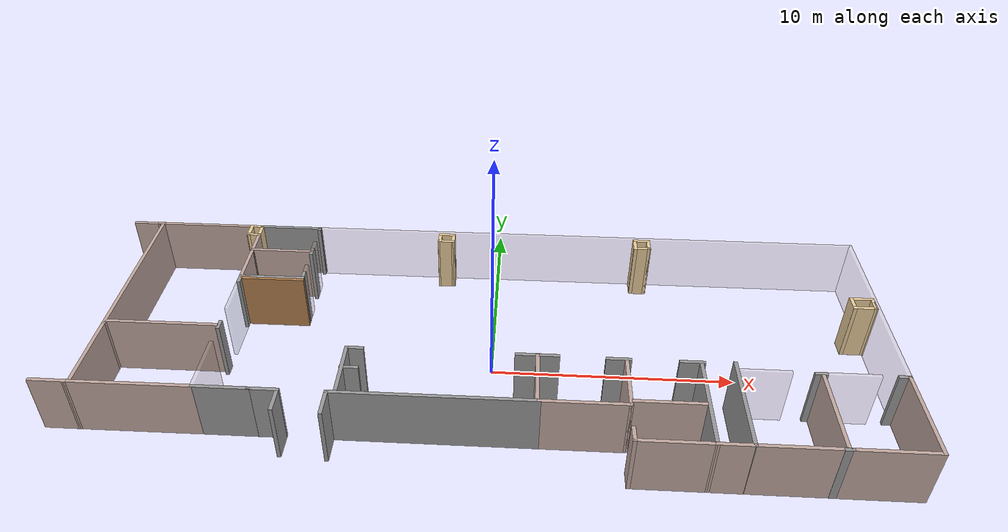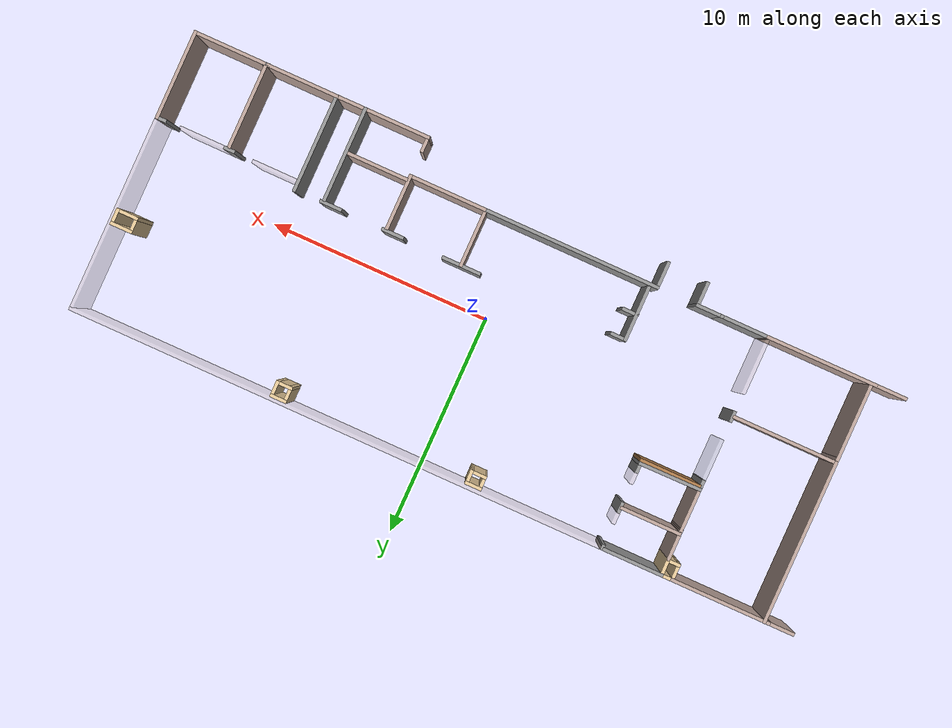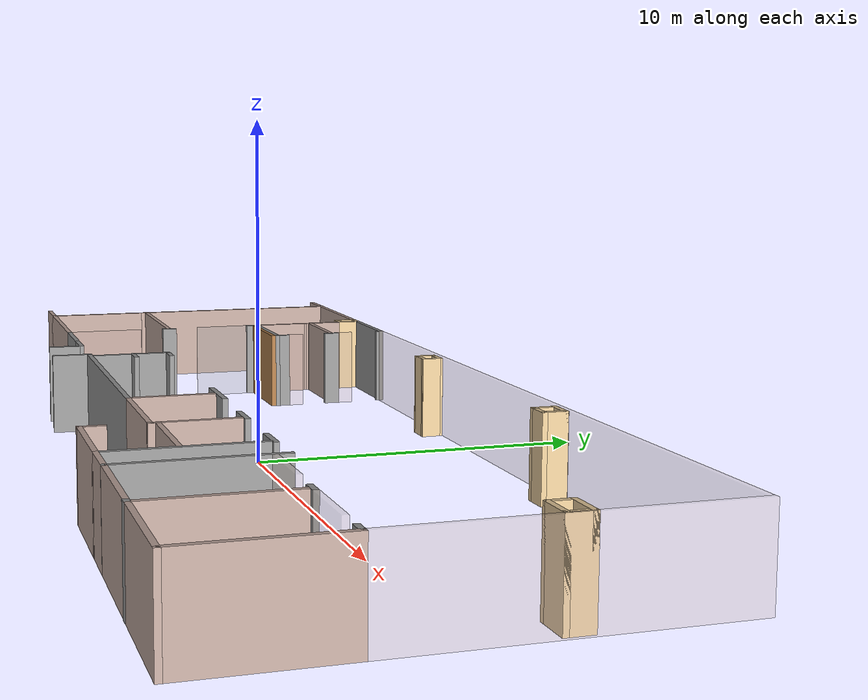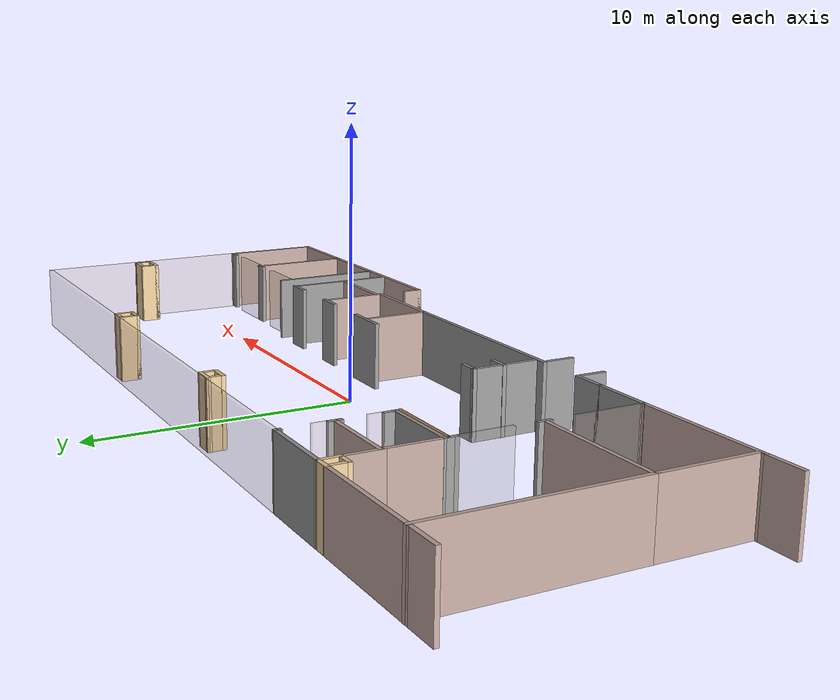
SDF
<?xml version='1.0'?>
<sdf version='1.6'>
  <model name='oa2'>
    <pose frame=''>-0.678371 0.389799 0 0 -0 0</pose>
    <link name='Wall_0'>
      <collision name='Wall_0_Collision'>
        <geometry>
          <box>
            <size>0.75 0.15 2.5</size>
          </box>
        </geometry>
        <pose frame=''>0 0 1.25 0 -0 0</pose>
      </collision>
      <visual name='Wall_0_Visual'>
        <pose frame=''>0 0 1.25 0 -0 0</pose>
        <geometry>
          <box>
            <size>0.75 0.15 2.5</size>
          </box>
        </geometry>
        <material>
          <script>
            <uri>file://media/materials/scripts/gazebo.material</uri>
            <name>Gazebo/Grey</name>
          </script>
          <ambient>0 0 0 1</ambient>
        </material>
        <meta>
          <layer>0</layer>
        </meta>
      </visual>
      <pose frame=''>-4.63163 -1.9898 0 0 -0 3.14159</pose>
    </link>
    <link name='Wall_1'>
      <collision name='Wall_1_Collision'>
        <geometry>
          <box>
            <size>2.5 0.15 2.5</size>
          </box>
        </geometry>
        <pose frame=''>0 0 1.25 0 -0 0</pose>
      </collision>
      <visual name='Wall_1_Visual'>
        <pose frame=''>0 0 1.25 0 -0 0</pose>
        <geometry>
          <box>
            <size>2.5 0.15 2.5</size>
          </box>
        </geometry>
        <material>
          <script>
            <uri>file://media/materials/scripts/gazebo.material</uri>
            <name>Gazebo/Grey</name>
          </script>
          <ambient>0 0 0 1</ambient>
        </material>
        <meta>
          <layer>0</layer>
        </meta>
      </visual>
      <pose frame=''>-4.93163 -3.1648 0 0 0 -1.5708</pose>
    </link>
    <link name='Wall_100'>
      <collision name='Wall_100_Collision'>
        <geometry>
          <box>
            <size>0.366372 0.15 2.5</size>
          </box>
        </geometry>
        <pose frame=''>0 0 1.25 0 -0 0</pose>
      </collision>
      <visual name='Wall_100_Visual'>
        <pose frame=''>0 0 1.25 0 -0 0</pose>
        <geometry>
          <box>
            <size>0.366372 0.15 2.5</size>
          </box>
        </geometry>
        <material>
          <script>
            <uri>file://media/materials/scripts/gazebo.material</uri>
            <name>Gazebo/Grey</name>
          </script>
          <ambient>1 1 1 1</ambient>
        </material>
        <meta>
          <layer>0</layer>
        </meta>
      </visual>
      <pose frame=''>13.2808 -6.2652 0 0 0 -3.11598</pose>
    </link>
    <link name='Wall_102'>
      <collision name='Wall_102_Collision'>
        <geometry>
          <box>
            <size>3.75 0.15 2.5</size>
          </box>
        </geometry>
        <pose frame=''>0 0 1.25 0 -0 0</pose>
      </collision>
      <visual name='Wall_102_Visual'>
        <pose frame=''>0 0 1.25 0 -0 0</pose>
        <geometry>
          <box>
            <size>3.75 0.15 2.5</size>
          </box>
        </geometry>
        <material>
          <script>
            <uri>file://media/materials/scripts/gazebo.material</uri>
            <name>Gazebo/Grey</name>
          </script>
          <ambient>0.760784 0.662745 0.627451 1</ambient>
        </material>
        <meta>
          <layer>0</layer>
        </meta>
      </visual>
      <pose frame=''>13.2718 -4.34355 0 0 0 -1.5708</pose>
    </link>
    <link name='Wall_11'>
      <collision name='Wall_11_Collision'>
        <geometry>
          <box>
            <size>2.5 0.15 2.5</size>
          </box>
        </geometry>
        <pose frame=''>0 0 1.25 0 -0 0</pose>
      </collision>
      <visual name='Wall_11_Visual'>
        <pose frame=''>0 0 1.25 0 -0 0</pose>
        <geometry>
          <box>
            <size>2.5 0.15 2.5</size>
          </box>
        </geometry>
        <material>
          <script>
            <uri>file://media/materials/scripts/gazebo.material</uri>
            <name>Gazebo/Grey</name>
          </script>
          <ambient>0.760784 0.662745 0.627451 1</ambient>
        </material>
        <meta>
          <layer>0</layer>
        </meta>
      </visual>
      <pose frame=''>2.52759 -3.18022 0 0 0 -1.5708</pose>
    </link>
    <link name='Wall_110'>
      <collision name='Wall_110_Collision'>
        <geometry>
          <box>
            <size>3.25 0.15 2.5</size>
          </box>
        </geometry>
        <pose frame=''>0 0 1.25 0 -0 0</pose>
      </collision>
      <visual name='Wall_110_Visual'>
        <pose frame=''>0 0 1.25 0 -0 0</pose>
        <geometry>
          <box>
            <size>3.25 0.15 2.5</size>
          </box>
        </geometry>
        <material>
          <script>
            <uri>file://media/materials/scripts/gazebo.material</uri>
            <name>Gazebo/Grey</name>
          </script>
          <ambient>0.760784 0.662745 0.627451 1</ambient>
        </material>
        <meta>
          <layer>0</layer>
        </meta>
      </visual>
      <pose frame=''>11.6313 -6.25931 0 0 -0 0</pose>
    </link>
    <link name='Wall_113'>
      <collision name='Wall_113_Collision'>
        <geometry>
          <box>
            <size>1.45217 0.15 2.5</size>
          </box>
        </geometry>
        <pose frame=''>0 0 1.25 0 -0 0</pose>
      </collision>
      <visual name='Wall_113_Visual'>
        <pose frame=''>0 0 1.25 0 -0 0</pose>
        <geometry>
          <box>
            <size>1.45217 0.15 2.5</size>
          </box>
        </geometry>
        <material>
          <script>
            <uri>file://media/materials/scripts/gazebo.material</uri>
            <name>Gazebo/Grey</name>
          </script>
          <ambient>0.760784 0.662745 0.627451 1</ambient>
        </material>
        <meta>
          <layer>0</layer>
        </meta>
      </visual>
      <pose frame=''>9.43019 -6.26045 0 0 -0 0.001756</pose>
    </link>
    <link name='Wall_116'>
      <collision name='Wall_116_Collision'>
        <geometry>
          <box>
            <size>4.40779 0.15 2.5</size>
          </box>
        </geometry>
        <pose frame=''>0 0 1.25 0 -0 0</pose>
      </collision>
      <visual name='Wall_116_Visual'>
        <pose frame=''>0 0 1.25 0 -0 0</pose>
        <geometry>
          <box>
            <size>4.40779 0.15 2.5</size>
          </box>
        </geometry>
        <material>
          <script>
            <uri>file://media/materials/scripts/gazebo.material</uri>
            <name>Gazebo/Grey</name>
          </script>
          <ambient>0 0 0 1</ambient>
        </material>
        <meta>
          <layer>0</layer>
        </meta>
      </visual>
      <pose frame=''>10.0806 -4.13042 0 0 0 -1.57049</pose>
    </link>
    <link name='Wall_118'>
      <collision name='Wall_118_Collision'>
        <geometry>
          <box>
            <size>4.25 0.15 2.5</size>
          </box>
        </geometry>
        <pose frame=''>0 0 1.25 0 -0 0</pose>
      </collision>
      <visual name='Wall_118_Visual'>
        <pose frame=''>0 0 1.25 0 -0 0</pose>
        <geometry>
          <box>
            <size>4.25 0.15 2.5</size>
          </box>
        </geometry>
        <material>
          <script>
            <uri>file://media/materials/scripts/gazebo.material</uri>
            <name>Gazebo/Grey</name>
          </script>
          <ambient>0 0 0 1</ambient>
        </material>
        <meta>
          <layer>0</layer>
        </meta>
      </visual>
      <pose frame=''>8.78475 -4.2116 0 0 0 -1.5708</pose>
    </link>
    <link name='Wall_120'>
      <collision name='Wall_120_Collision'>
        <geometry>
          <box>
            <size>1 0.15 2.5</size>
          </box>
        </geometry>
        <pose frame=''>0 0 1.25 0 -0 0</pose>
      </collision>
      <visual name='Wall_120_Visual'>
        <pose frame=''>0 0 1.25 0 -0 0</pose>
        <geometry>
          <box>
            <size>1 0.15 2.5</size>
          </box>
        </geometry>
        <material>
          <script>
            <uri>file://media/materials/scripts/gazebo.material</uri>
            <name>Gazebo/Grey</name>
          </script>
          <ambient>0 0 0 1</ambient>
        </material>
        <meta>
          <layer>0</layer>
        </meta>
      </visual>
      <pose frame=''>8.44693 -2.03935 0 0 -0 0</pose>
    </link>
    <link name='Wall_122'>
      <collision name='Wall_122_Collision'>
        <geometry>
          <box>
            <size>1 0.15 2.5</size>
          </box>
        </geometry>
        <pose frame=''>0 0 1.25 0 -0 0</pose>
      </collision>
      <visual name='Wall_122_Visual'>
        <pose frame=''>0 0 1.25 0 -0 0</pose>
        <geometry>
          <box>
            <size>1 0.15 2.5</size>
          </box>
        </geometry>
        <material>
          <script>
            <uri>file://media/materials/scripts/gazebo.material</uri>
            <name>Gazebo/Grey</name>
          </script>
          <ambient>0 0 0 1</ambient>
        </material>
        <meta>
          <layer>0</layer>
        </meta>
      </visual>
      <pose frame=''>5.64113 -2.03506 0 0 -0 3.14159</pose>
    </link>
    <link name='Wall_124'>
      <collision name='Wall_124_Collision'>
        <geometry>
          <box>
            <size>2.75 0.15 2.5</size>
          </box>
        </geometry>
        <pose frame=''>0 0 1.25 0 -0 0</pose>
      </collision>
      <visual name='Wall_124_Visual'>
        <pose frame=''>0 0 1.25 0 -0 0</pose>
        <geometry>
          <box>
            <size>2.75 0.15 2.5</size>
          </box>
        </geometry>
        <material>
          <script>
            <uri>file://media/materials/scripts/gazebo.material</uri>
            <name>Gazebo/Grey</name>
          </script>
          <ambient>0.760784 0.662745 0.627451 1</ambient>
        </material>
        <meta>
          <layer>0</layer>
        </meta>
      </visual>
      <pose frame=''>7.35645 -4.30687 0 0 -0 3.14159</pose>
    </link>
    <link name='Wall_126'>
      <collision name='Wall_126_Collision'>
        <geometry>
          <box>
            <size>2.5 0.15 2.5</size>
          </box>
        </geometry>
        <pose frame=''>0 0 1.25 0 -0 0</pose>
      </collision>
      <visual name='Wall_126_Visual'>
        <pose frame=''>0 0 1.25 0 -0 0</pose>
        <geometry>
          <box>
            <size>2.5 0.15 2.5</size>
          </box>
        </geometry>
        <material>
          <script>
            <uri>file://media/materials/scripts/gazebo.material</uri>
            <name>Gazebo/Grey</name>
          </script>
          <ambient>0.760784 0.662745 0.627451 1</ambient>
        </material>
        <meta>
          <layer>0</layer>
        </meta>
      </visual>
      <pose frame=''>5.94317 -3.32964 0 0 -0 1.5708</pose>
    </link>
    <link name='Wall_128'>
      <collision name='Wall_128_Collision'>
        <geometry>
          <box>
            <size>3.5 0.15 2.5</size>
          </box>
        </geometry>
        <pose frame=''>0 0 1.25 0 -0 0</pose>
      </collision>
      <visual name='Wall_128_Visual'>
        <pose frame=''>0 0 1.25 0 -0 0</pose>
        <geometry>
          <box>
            <size>3.5 0.15 2.5</size>
          </box>
        </geometry>
        <material>
          <script>
            <uri>file://media/materials/scripts/gazebo.material</uri>
            <name>Gazebo/Grey</name>
          </script>
          <ambient>0.760784 0.662745 0.627451 1</ambient>
        </material>
        <meta>
          <layer>0</layer>
        </meta>
      </visual>
      <pose frame=''>4.26817 -4.50464 0 0 -0 0</pose>
    </link>

    <link name='Wall_136'>
      <collision name='Wall_136_Collision'>
        <geometry>
          <box>
            <size>1.25 0.15 2.5</size>
          </box>
        </geometry>
        <pose frame=''>0 0 1.25 0 -0 0</pose>
      </collision>
      <visual name='Wall_136_Visual'>
        <pose frame=''>0 0 1.25 0 -0 0</pose>
        <geometry>
          <box>
            <size>1.25 0.15 2.5</size>
          </box>
        </geometry>
        <material>
          <script>
            <uri>file://media/materials/scripts/gazebo.material</uri>
            <name>Gazebo/Grey</name>
          </script>
          <ambient>0 0 0 1</ambient>
        </material>
        <meta>
          <layer>0</layer>
        </meta>
      </visual>
      <pose frame=''>-5.25683 -5.05464 0 0 0 -1.5708</pose>
    </link>
    <link name='Wall_14'>
      <collision name='Wall_14_Collision'>
        <geometry>
          <box>
            <size>3.5 0.15 2.5</size>
          </box>
        </geometry>
        <pose frame=''>0 0 1.25 0 -0 0</pose>
      </collision>
      <visual name='Wall_14_Visual'>
        <pose frame=''>0 0 1.25 0 -0 0</pose>
        <geometry>
          <box>
            <size>3.5 0.15 2.5</size>
          </box>
        </geometry>
        <material>
          <script>
            <uri>file://media/materials/scripts/gazebo.material</uri>
            <name>Gazebo/Grey</name>
          </script>
          <ambient>1 1 1 1</ambient>
        </material>
        <meta>
          <layer>0</layer>
        </meta>
      </visual>
      <pose frame=''>4.26817 -4.50464 0 0 -0 0</pose>
    </link>
    <link name='Wall_140'>
      <collision name='Wall_140_Collision'>
        <geometry>
          <box>
            <size>0.15 0.15 2.5</size>
          </box>
        </geometry>
        <pose frame=''>0 0 1.25 0 -0 0</pose>
      </collision>
      <visual name='Wall_140_Visual'>
        <pose frame=''>0 0 1.25 0 -0 0</pose>
        <geometry>
          <box>
            <size>0.15 0.15 2.5</size>
          </box>
        </geometry>
        <material>
          <script>
            <uri>file://media/materials/scripts/gazebo.material</uri>
            <name>Gazebo/Grey</name>
          </script>
          <ambient>0 0 0 1</ambient>
        </material>
        <meta>
          <layer>0</layer>
        </meta>
      </visual>
      <pose frame=''>-8.18351 -4.51172 0 0 -0 0</pose>
    </link>
    <link name='Wall_142'>
      <collision name='Wall_142_Collision'>
        <geometry>
          <box>
            <size>2.25 0.15 2.5</size>
          </box>
        </geometry>
        <pose frame=''>0 0 1.25 0 -0 0</pose>
      </collision>
      <visual name='Wall_142_Visual'>
        <pose frame=''>0 0 1.25 0 -0 0</pose>
        <geometry>
          <box>
            <size>2.25 0.15 2.5</size>
          </box>
        </geometry>
        <material>
          <script>
            <uri>file://media/materials/scripts/gazebo.material</uri>
            <name>Gazebo/Grey</name>
          </script>
          <ambient>0 0 0 1</ambient>
        </material>
        <meta>
          <layer>0</layer>
        </meta>
      </visual>
      <pose frame=''>-9.23351 -4.51172 0 0 -0 0</pose>
    </link>
    <link name='Wall_143'>
      <collision name='Wall_143_Collision'>
        <geometry>
          <box>
            <size>1.25 0.15 2.5</size>
          </box>
        </geometry>
        <pose frame=''>0 0 1.25 0 -0 0</pose>
      </collision>
      <visual name='Wall_143_Visual'>
        <pose frame=''>0 0 1.25 0 -0 0</pose>
        <geometry>
          <box>
            <size>1.25 0.15 2.5</size>
          </box>
        </geometry>
        <material>
          <script>
            <uri>file://media/materials/scripts/gazebo.material</uri>
            <name>Gazebo/Grey</name>
          </script>
          <ambient>0 0 0 1</ambient>
        </material>
        <meta>
          <layer>0</layer>
        </meta>
      </visual>
      <pose frame=''>-7.63351 -4.51172 0 0 -0 0</pose>
    </link>
    <link name='Wall_145'>
      <collision name='Wall_145_Collision'>
        <geometry>
          <box>
            <size>3 0.15 2.5</size>
          </box>
        </geometry>
        <pose frame=''>0 0 1.25 0 -0 0</pose>
      </collision>
      <visual name='Wall_145_Visual'>
        <pose frame=''>0 0 1.25 0 -0 0</pose>
        <geometry>
          <box>
            <size>3 0.15 2.5</size>
          </box>
        </geometry>
        <material>
          <script>
            <uri>file://media/materials/scripts/gazebo.material</uri>
            <name>Gazebo/Grey</name>
          </script>
          <ambient>0.760784 0.662745 0.627451 1</ambient>
        </material>
        <meta>
          <layer>0</layer>
        </meta>
      </visual>
      <pose frame=''>7.35975 -6.2616 0 0 -0 3.14159</pose>
    </link>
    <link name='Wall_146'>
      <collision name='Wall_146_Collision'>
        <geometry>
          <box>
            <size>0.75 0.15 2.5</size>
          </box>
        </geometry>
        <pose frame=''>0 0 1.25 0 -0 0</pose>
      </collision>
      <visual name='Wall_146_Visual'>
        <pose frame=''>0 0 1.25 0 -0 0</pose>
        <geometry>
          <box>
            <size>0.75 0.15 2.5</size>
          </box>
        </geometry>
        <material>
          <script>
            <uri>file://media/materials/scripts/gazebo.material</uri>
            <name>Gazebo/Grey</name>
          </script>
          <ambient>0.760784 0.662745 0.627451 1</ambient>
        </material>
        <meta>
          <layer>0</layer>
        </meta>
      </visual>
      <pose frame=''>5.93475 -5.9616 0 0 -0 1.5708</pose>
    </link>
    <link name='Wall_148'>
      <collision name='Wall_148_Collision'>
        <geometry>
          <box>
            <size>2 0.15 2.5</size>
          </box>
        </geometry>
        <pose frame=''>0 0 1.25 0 -0 0</pose>
      </collision>
      <visual name='Wall_148_Visual'>
        <pose frame=''>0 0 1.25 0 -0 0</pose>
        <geometry>
          <box>
            <size>2 0.15 2.5</size>
          </box>
        </geometry>
        <material>
          <script>
            <uri>file://media/materials/scripts/gazebo.material</uri>
            <name>Gazebo/Grey</name>
          </script>
          <ambient>0.760784 0.662745 0.627451 1</ambient>
        </material>
        <meta>
          <layer>0</layer>
        </meta>
        <transparency>0.7</transparency>
      </visual>
      <pose frame=''>11.1562 -2.38788 0 0 -0 0</pose>
    </link>
    <link name='Wall_150'>
      <collision name='Wall_150_Collision'>
        <geometry>
          <box>
            <size>0.5 0.15 2.5</size>
          </box>
        </geometry>
        <pose frame=''>0 0 1.25 0 -0 0</pose>
      </collision>
      <visual name='Wall_150_Visual'>
        <pose frame=''>0 0 1.25 0 -0 0</pose>
        <geometry>
          <box>
            <size>0.5 0.15 2.5</size>
          </box>
        </geometry>
        <material>
          <script>
            <uri>file://media/materials/scripts/gazebo.material</uri>
            <name>Gazebo/Grey</name>
          </script>
          <ambient>0 0 0 1</ambient>
        </material>
        <meta>
          <layer>0</layer>
        </meta>
      </visual>
      <pose frame=''>13.2138 -2.41724 0 0 -0 0</pose>
    </link>
    <link name='Wall_154'>
      <collision name='Wall_154_Collision'>
        <geometry>
          <box>
            <size>0.75 0.15 2.5</size>
          </box>
        </geometry>
        <pose frame=''>0 0 1.25 0 -0 0</pose>
      </collision>
      <visual name='Wall_154_Visual'>
        <pose frame=''>0 0 1.25 0 -0 0</pose>
        <geometry>
          <box>
            <size>0.75 0.15 2.5</size>
          </box>
        </geometry>
        <material>
          <script>
            <uri>file://media/materials/scripts/gazebo.material</uri>
            <name>Gazebo/Grey</name>
          </script>
          <ambient>0.921569 0.807843 0.615686 1</ambient>
        </material>
        <meta>
          <layer>0</layer>
        </meta>
      </visual>
      <pose frame=''>-1.6868 6.09715 0 0 -0 0</pose>
    </link>
    <link name='Wall_155'>
      <collision name='Wall_155_Collision'>
        <geometry>
          <box>
            <size>0.663879 0.15 2.5</size>
          </box>
        </geometry>
        <pose frame=''>0 0 1.25 0 -0 0</pose>
      </collision>
      <visual name='Wall_155_Visual'>
        <pose frame=''>0 0 1.25 0 -0 0</pose>
        <geometry>
          <box>
            <size>0.663879 0.15 2.5</size>
          </box>
        </geometry>
        <material>
          <script>
            <uri>file://media/materials/scripts/gazebo.material</uri>
            <name>Gazebo/Grey</name>
          </script>
          <ambient>0.921569 0.807843 0.615686 1</ambient>
        </material>
        <meta>
          <layer>0</layer>
        </meta>
      </visual>
      <pose frame=''>-1.38372 5.84021 0 0 0 -1.55883</pose>
    </link>
    <link name='Wall_156'>
      <collision name='Wall_156_Collision'>
        <geometry>
          <box>
            <size>0.75 0.15 2.5</size>
          </box>
        </geometry>
        <pose frame=''>0 0 1.25 0 -0 0</pose>
      </collision>
      <visual name='Wall_156_Visual'>
        <pose frame=''>0 0 1.25 0 -0 0</pose>
        <geometry>
          <box>
            <size>0.75 0.15 2.5</size>
          </box>
        </geometry>
        <material>
          <script>
            <uri>file://media/materials/scripts/gazebo.material</uri>
            <name>Gazebo/Grey</name>
          </script>
          <ambient>0.921569 0.807843 0.615686 1</ambient>
        </material>
        <meta>
          <layer>0</layer>
        </meta>
      </visual>
      <pose frame=''>-1.6868 5.58326 0 0 -0 3.14159</pose>
    </link>
    <link name='Wall_157'>
      <collision name='Wall_157_Collision'>
        <geometry>
          <box>
            <size>0.663879 0.15 2.5</size>
          </box>
        </geometry>
        <pose frame=''>0 0 1.25 0 -0 0</pose>
      </collision>
      <visual name='Wall_157_Visual'>
        <pose frame=''>0 0 1.25 0 -0 0</pose>
        <geometry>
          <box>
            <size>0.663879 0.15 2.5</size>
          </box>
        </geometry>
        <material>
          <script>
            <uri>file://media/materials/scripts/gazebo.material</uri>
            <name>Gazebo/Grey</name>
          </script>
          <ambient>0.921569 0.807843 0.615686 1</ambient>
        </material>
        <meta>
          <layer>0</layer>
        </meta>
      </visual>
      <pose frame=''>-1.98372 5.84021 0 0 -0 1.58277</pose>
    </link>
    <link name='Wall_159'>
      <collision name='Wall_159_Collision'>
        <geometry>
          <box>
            <size>0.75 0.15 2.5</size>
          </box>
        </geometry>
        <pose frame=''>0 0 1.25 0 -0 0</pose>
      </collision>
      <visual name='Wall_159_Visual'>
        <pose frame=''>0 0 1.25 0 -0 0</pose>
        <geometry>
          <box>
            <size>0.75 0.15 2.5</size>
          </box>
        </geometry>
        <material>
          <script>
            <uri>file://media/materials/scripts/gazebo.material</uri>
            <name>Gazebo/Grey</name>
          </script>
          <ambient>0.921569 0.807843 0.615686 1</ambient>
        </material>
        <meta>
          <layer>0</layer>
        </meta>
      </visual>
      <pose frame=''>7.14671 6.12175 0 0 -0 0</pose>
    </link>
    <link name='Wall_160'>
      <collision name='Wall_160_Collision'>
        <geometry>
          <box>
            <size>0.75 0.15 2.5</size>
          </box>
        </geometry>
        <pose frame=''>0 0 1.25 0 -0 0</pose>
      </collision>
      <visual name='Wall_160_Visual'>
        <pose frame=''>0 0 1.25 0 -0 0</pose>
        <geometry>
          <box>
            <size>0.75 0.15 2.5</size>
          </box>
        </geometry>
        <material>
          <script>
            <uri>file://media/materials/scripts/gazebo.material</uri>
            <name>Gazebo/Grey</name>
          </script>
          <ambient>0.921569 0.807843 0.615686 1</ambient>
        </material>
        <meta>
          <layer>0</layer>
        </meta>
      </visual>
      <pose frame=''>7.44671 5.82175 0 0 0 -1.5708</pose>
    </link>
    <link name='Wall_161'>
      <collision name='Wall_161_Collision'>
        <geometry>
          <box>
            <size>0.75 0.15 2.5</size>
          </box>
        </geometry>
        <pose frame=''>0 0 1.25 0 -0 0</pose>
      </collision>
      <visual name='Wall_161_Visual'>
        <pose frame=''>0 0 1.25 0 -0 0</pose>
        <geometry>
          <box>
            <size>0.75 0.15 2.5</size>
          </box>
        </geometry>
        <material>
          <script>
            <uri>file://media/materials/scripts/gazebo.material</uri>
            <name>Gazebo/Grey</name>
          </script>
          <ambient>0.921569 0.807843 0.615686 1</ambient>
        </material>
        <meta>
          <layer>0</layer>
        </meta>
      </visual>
      <pose frame=''>7.14671 5.52175 0 0 -0 3.14159</pose>
    </link>
    <link name='Wall_162'>
      <collision name='Wall_162_Collision'>
        <geometry>
          <box>
            <size>0.75 0.15 2.5</size>
          </box>
        </geometry>
        <pose frame=''>0 0 1.25 0 -0 0</pose>
      </collision>
      <visual name='Wall_162_Visual'>
        <pose frame=''>0 0 1.25 0 -0 0</pose>
        <geometry>
          <box>
            <size>0.75 0.15 2.5</size>
          </box>
        </geometry>
        <material>
          <script>
            <uri>file://media/materials/scripts/gazebo.material</uri>
            <name>Gazebo/Grey</name>
          </script>
          <ambient>0.921569 0.807843 0.615686 1</ambient>
        </material>
        <meta>
          <layer>0</layer>
        </meta>
      </visual>
      <pose frame=''>6.84671 5.82175 0 0 -0 1.5708</pose>
    </link>
    <link name='Wall_164'>
      <collision name='Wall_164_Collision'>
        <geometry>
          <box>
            <size>1 0.15 2.5</size>
          </box>
        </geometry>
        <pose frame=''>0 0 1.25 0 -0 0</pose>
      </collision>
      <visual name='Wall_164_Visual'>
        <pose frame=''>0 0 1.25 0 -0 0</pose>
        <geometry>
          <box>
            <size>1 0.15 2.5</size>
          </box>
        </geometry>
        <material>
          <script>
            <uri>file://media/materials/scripts/gazebo.material</uri>
            <name>Gazebo/Grey</name>
          </script>
          <ambient>0.921569 0.807843 0.615686 1</ambient>
        </material>
        <meta>
          <layer>0</layer>
        </meta>
      </visual>
      <pose frame=''>15.9667 2.34904 0 0 -0 0</pose>
    </link>
    <link name='Wall_165'>
      <collision name='Wall_165_Collision'>
        <geometry>
          <box>
            <size>0.75 0.15 2.5</size>
          </box>
        </geometry>
        <pose frame=''>0 0 1.25 0 -0 0</pose>
      </collision>
      <visual name='Wall_165_Visual'>
        <pose frame=''>0 0 1.25 0 -0 0</pose>
        <geometry>
          <box>
            <size>0.75 0.15 2.5</size>
          </box>
        </geometry>
        <material>
          <script>
            <uri>file://media/materials/scripts/gazebo.material</uri>
            <name>Gazebo/Grey</name>
          </script>
          <ambient>0.921569 0.807843 0.615686 1</ambient>
        </material>
        <meta>
          <layer>0</layer>
        </meta>
      </visual>
      <pose frame=''>16.3917 2.04904 0 0 0 -1.5708</pose>
    </link>
    <link name='Wall_166'>
      <collision name='Wall_166_Collision'>
        <geometry>
          <box>
            <size>1 0.15 2.5</size>
          </box>
        </geometry>
        <pose frame=''>0 0 1.25 0 -0 0</pose>
      </collision>
      <visual name='Wall_166_Visual'>
        <pose frame=''>0 0 1.25 0 -0 0</pose>
        <geometry>
          <box>
            <size>1 0.15 2.5</size>
          </box>
        </geometry>
        <material>
          <script>
            <uri>file://media/materials/scripts/gazebo.material</uri>
            <name>Gazebo/Grey</name>
          </script>
          <ambient>0.921569 0.807843 0.615686 1</ambient>
        </material>
        <meta>
          <layer>0</layer>
        </meta>
      </visual>
      <pose frame=''>15.9667 1.74904 0 0 -0 3.14159</pose>
    </link>
    <link name='Wall_167'>
      <collision name='Wall_167_Collision'>
        <geometry>
          <box>
            <size>0.75 0.15 2.5</size>
          </box>
        </geometry>
        <pose frame=''>0 0 1.25 0 -0 0</pose>
      </collision>
      <visual name='Wall_167_Visual'>
        <pose frame=''>0 0 1.25 0 -0 0</pose>
        <geometry>
          <box>
            <size>0.75 0.15 2.5</size>
          </box>
        </geometry>
        <material>
          <script>
            <uri>file://media/materials/scripts/gazebo.material</uri>
            <name>Gazebo/Grey</name>
          </script>
          <ambient>0.921569 0.807843 0.615686 1</ambient>
        </material>
        <meta>
          <layer>0</layer>
        </meta>
      </visual>
      <pose frame=''>15.5417 2.04904 0 0 -0 1.5708</pose>
    </link>
    <link name='Wall_171'>
      <collision name='Wall_171_Collision'>
        <geometry>
          <box>
            <size>1.5 0.15 2.5</size>
          </box>
        </geometry>
        <pose frame=''>0 0 1.25 0 -0 0</pose>
      </collision>
      <visual name='Wall_171_Visual'>
        <pose frame=''>0 0 1.25 0 -0 0</pose>
        <geometry>
          <box>
            <size>1.5 0.15 2.5</size>
          </box>
        </geometry>
        <material>
          <script>
            <uri>file://media/materials/scripts/gazebo.material</uri>
            <name>Gazebo/Grey</name>
          </script>
          <ambient>0.760784 0.662745 0.627451 1</ambient>
        </material>
        <meta>
          <layer>0</layer>
        </meta>
      </visual>
      <pose frame=''>-15.8139 -4.52516 0 0 -0 0</pose>
    </link>
    <link name='Wall_173'>
      <collision name='Wall_173_Collision'>
        <geometry>
          <box>
            <size>2 0.15 2.5</size>
          </box>
        </geometry>
        <pose frame=''>0 0 1.25 0 -0 0</pose>
      </collision>
      <visual name='Wall_173_Visual'>
        <pose frame=''>0 0 1.25 0 -0 0</pose>
        <geometry>
          <box>
            <size>2 0.15 2.5</size>
          </box>
        </geometry>
        <material>
          <script>
            <uri>file://media/materials/scripts/gazebo.material</uri>
            <name>Gazebo/Grey</name>
          </script>
          <ambient>0.760784 0.662745 0.627451 1</ambient>
        </material>
        <meta>
          <layer>0</layer>
        </meta>
        <transparency>0.7</transparency>
      </visual>
      <pose frame=''>14.4632 -2.417 0 0 -0 3.14159</pose>
    </link>
    <link name='Wall_176'>
      <collision name='Wall_176_Collision'>
        <geometry>
          <box>
            <size>0.5 0.15 2.5</size>
          </box>
        </geometry>
        <pose frame=''>0 0 1.25 0 -0 0</pose>
      </collision>
      <visual name='Wall_176_Visual'>
        <pose frame=''>0 0 1.25 0 -0 0</pose>
        <geometry>
          <box>
            <size>0.5 0.15 2.5</size>
          </box>
        </geometry>
        <material>
          <script>
            <uri>file://media/materials/scripts/gazebo.material</uri>
            <name>Gazebo/Grey</name>
          </script>
          <ambient>0 0 0 1</ambient>
        </material>
        <meta>
          <layer>0</layer>
        </meta>
      </visual>
      <pose frame=''>-7.60887 2.60058 0 0 0 -1.5708</pose>
    </link>
    <link name='Wall_178'>
      <collision name='Wall_178_Collision'>
        <geometry>
          <box>
            <size>0.5 0.15 2.5</size>
          </box>
        </geometry>
        <pose frame=''>0 0 1.25 0 -0 0</pose>
      </collision>
      <visual name='Wall_178_Visual'>
        <pose frame=''>0 0 1.25 0 -0 0</pose>
        <geometry>
          <box>
            <size>0.5 0.15 2.5</size>
          </box>
        </geometry>
        <material>
          <script>
            <uri>file://media/materials/scripts/gazebo.material</uri>
            <name>Gazebo/Grey</name>
          </script>
          <ambient>0.760784 0.662745 0.627451 1</ambient>
        </material>
        <meta>
          <layer>0</layer>
        </meta>
        <transparency>0.7</transparency>
      </visual>
      <pose frame=''>-7.60925 3.1 0 0 0 -1.5708</pose>
    </link>
    <link name='Wall_18'>
      <collision name='Wall_18_Collision'>
        <geometry>
          <box>
            <size>8 0.15 2.5</size>
          </box>
        </geometry>
        <pose frame=''>0 0 1.25 0 -0 0</pose>
      </collision>
      <visual name='Wall_18_Visual'>
        <pose frame=''>0 0 1.25 0 -0 0</pose>
        <geometry>
          <box>
            <size>8 0.15 2.5</size>
          </box>
        </geometry>
        <material>
          <script>
            <uri>file://media/materials/scripts/gazebo.material</uri>
            <name>Gazebo/Grey</name>
          </script>
          <ambient>0 0 0 1</ambient>
        </material>
        <meta>
          <layer>0</layer>
        </meta>
      </visual>
      <pose frame=''>-1.33183 -4.50464 0 0 -0 3.14159</pose>
    </link>
    <link name='Wall_180'>
      <collision name='Wall_180_Collision'>
        <geometry>
          <box>
            <size>0.5 0.15 2.5</size>
          </box>
        </geometry>
        <pose frame=''>0 0 1.25 0 -0 0</pose>
      </collision>
      <visual name='Wall_180_Visual'>
        <pose frame=''>0 0 1.25 0 -0 0</pose>
        <geometry>
          <box>
            <size>0.5 0.15 2.5</size>
          </box>
        </geometry>
        <material>
          <script>
            <uri>file://media/materials/scripts/gazebo.material</uri>
            <name>Gazebo/Grey</name>
          </script>
          <ambient>0.760784 0.662745 0.627451 1</ambient>
        </material>
        <meta>
          <layer>0</layer>
        </meta>
        <transparency>0.7</transparency>
      </visual>
      <pose frame=''>-7.60842 4.90901 0 0 0 -1.5708</pose>
    </link>
    <link name='Wall_184'>
      <collision name='Wall_184_Collision'>
        <geometry>
          <box>
            <size>1 0.15 2.5</size>
          </box>
        </geometry>
        <pose frame=''>0 0 1.25 0 -0 0</pose>
      </collision>
      <visual name='Wall_184_Visual'>
        <pose frame=''>0 0 1.25 0 -0 0</pose>
        <geometry>
          <box>
            <size>1 0.15 2.5</size>
          </box>
        </geometry>
        <material>
          <script>
            <uri>file://media/materials/scripts/gazebo.material</uri>
            <name>Gazebo/Grey</name>
          </script>
          <ambient>0 0 0 1</ambient>
        </material>
        <meta>
          <layer>0</layer>
        </meta>
      </visual>
      <pose frame=''>-7.08282 -5.08326 0 0 -0 1.5708</pose>
    </link>
    <link name='Wall_22'>
      <collision name='Wall_22_Collision'>
        <geometry>
          <box>
            <size>5.00543 0.15 2.5</size>
          </box>
        </geometry>
        <pose frame=''>0 0 1.25 0 -0 0</pose>
      </collision>
      <visual name='Wall_22_Visual'>
        <pose frame=''>0 0 1.25 0 -0 0</pose>
        <geometry>
          <box>
            <size>5.00543 0.15 2.5</size>
          </box>
        </geometry>
        <material>
          <script>
            <uri>file://media/materials/scripts/gazebo.material</uri>
            <name>Gazebo/Grey</name>
          </script>
          <ambient>0.760784 0.662745 0.627451 1</ambient>
        </material>
        <meta>
          <layer>0</layer>
        </meta>
      </visual>
      <pose frame=''>-12.7112 -4.51844 0 0 0 -3.13883</pose>
    </link>
    <link name='Wall_24'>
      <collision name='Wall_24_Collision'>
        <geometry>
          <box>
            <size>2.5 0.15 2.5</size>
          </box>
        </geometry>
        <pose frame=''>0 0 1.25 0 -0 0</pose>
      </collision>
      <visual name='Wall_24_Visual'>
        <pose frame=''>0 0 1.25 0 -0 0</pose>
        <geometry>
          <box>
            <size>2.5 0.15 2.5</size>
          </box>
        </geometry>
        <material>
          <script>
            <uri>file://media/materials/scripts/gazebo.material</uri>
            <name>Gazebo/Grey</name>
          </script>
          <ambient>0.760784 0.662745 0.627451 1</ambient>
        </material>
        <meta>
          <layer>0</layer>
        </meta>
        <transparency>0.7</transparency>
      </visual>
      <pose frame=''>-10.304 -3.20742 0 0 0 -1.5708</pose>
    </link>
    <link name='Wall_26'>
      <collision name='Wall_26_Collision'>
        <geometry>
          <box>
            <size>3.5 0.15 2.5</size>
          </box>
        </geometry>
        <pose frame=''>0 0 1.25 0 -0 0</pose>
      </collision>
      <visual name='Wall_26_Visual'>
        <pose frame=''>0 0 1.25 0 -0 0</pose>
        <geometry>
          <box>
            <size>3.5 0.15 2.5</size>
          </box>
        </geometry>
        <material>
          <script>
            <uri>file://media/materials/scripts/gazebo.material</uri>
            <name>Gazebo/Grey</name>
          </script>
          <ambient>0.760784 0.662745 0.627451 1</ambient>
        </material>
        <meta>
          <layer>0</layer>
        </meta>
      </visual>
      <pose frame=''>-14.9661 -2.75514 0 0 -0 1.5708</pose>
    </link>
    <link name='Wall_28'>
      <collision name='Wall_28_Collision'>
        <geometry>
          <box>
            <size>7.5 0.15 2.5</size>
          </box>
        </geometry>
        <pose frame=''>0 0 1.25 0 -0 0</pose>
      </collision>
      <visual name='Wall_28_Visual'>
        <pose frame=''>0 0 1.25 0 -0 0</pose>
        <geometry>
          <box>
            <size>7.5 0.15 2.5</size>
          </box>
        </geometry>
        <material>
          <script>
            <uri>file://media/materials/scripts/gazebo.material</uri>
            <name>Gazebo/Grey</name>
          </script>
          <ambient>0.760784 0.662745 0.627451 1</ambient>
        </material>
        <meta>
          <layer>0</layer>
        </meta>
      </visual>
      <pose frame=''>-14.9661 2.59486 0 0 -0 1.5708</pose>
    </link>
    <link name='Wall_3'>
      <collision name='Wall_3_Collision'>
        <geometry>
          <box>
            <size>0.75 0.15 2.5</size>
          </box>
        </geometry>
        <pose frame=''>0 0 1.25 0 -0 0</pose>
      </collision>
      <visual name='Wall_3_Visual'>
        <pose frame=''>0 0 1.25 0 -0 0</pose>
        <geometry>
          <box>
            <size>0.75 0.15 2.5</size>
          </box>
        </geometry>
        <material>
          <script>
            <uri>file://media/materials/scripts/gazebo.material</uri>
            <name>Gazebo/Grey</name>
          </script>
          <ambient>0 0 0 1</ambient>
        </material>
        <meta>
          <layer>0</layer>
        </meta>
      </visual>
      <pose frame=''>-4.65163 -3.1198 0 0 -0 3.14159</pose>
    </link>
    <link name='Wall_31'>
      <collision name='Wall_31_Collision'>
        <geometry>
          <box>
            <size>4.75 0.15 2.5</size>
          </box>
        </geometry>
        <pose frame=''>0 0 1.25 0 -0 0</pose>
      </collision>
      <visual name='Wall_31_Visual'>
        <pose frame=''>0 0 1.25 0 -0 0</pose>
        <geometry>
          <box>
            <size>4.75 0.15 2.5</size>
          </box>
        </geometry>
        <material>
          <script>
            <uri>file://media/materials/scripts/gazebo.material</uri>
            <name>Gazebo/Grey</name>
          </script>
          <ambient>0.760784 0.662745 0.627451 1</ambient>
        </material>
        <meta>
          <layer>0</layer>
        </meta>
      </visual>
      <pose frame=''>-12.6628 -0.929148 0 0 -0 0</pose>
    </link>
    <link name='Wall_34'>
      <collision name='Wall_34_Collision'>
        <geometry>
          <box>
            <size>0.5 0.15 2.5</size>
          </box>
        </geometry>
        <pose frame=''>0 0 1.25 0 -0 0</pose>
      </collision>
      <visual name='Wall_34_Visual'>
        <pose frame=''>0 0 1.25 0 -0 0</pose>
        <geometry>
          <box>
            <size>0.5 0.15 2.5</size>
          </box>
        </geometry>
        <material>
          <script>
            <uri>file://media/materials/scripts/gazebo.material</uri>
            <name>Gazebo/Grey</name>
          </script>
          <ambient>0 0 0 1</ambient>
        </material>
        <meta>
          <layer>0</layer>
        </meta>
      </visual>
      <pose frame=''>-10.286 -0.918746 0 0 0 -1.5708</pose>
    </link>
    <link name='Wall_36'>
      <collision name='Wall_36_Collision'>
        <geometry>
          <box>
            <size>2 0.15 2.5</size>
          </box>
        </geometry>
        <pose frame=''>0 0 1.25 0 -0 0</pose>
      </collision>
      <visual name='Wall_36_Visual'>
        <pose frame=''>0 0 1.25 0 -0 0</pose>
        <geometry>
          <box>
            <size>2 0.15 2.5</size>
          </box>
        </geometry>
        <material>
          <script>
            <uri>file://media/materials/scripts/gazebo.material</uri>
            <name>Gazebo/Grey</name>
          </script>
          <ambient>0 0 0 1</ambient>
        </material>
        <meta>
          <layer>0</layer>
        </meta>
        <transparency>0.7</transparency>
      </visual>
      <pose frame=''>-10.2838 1.11702 0 0 -0 1.5708</pose>
    </link>
    <link name='Wall_38'>
      <collision name='Wall_38_Collision'>
        <geometry>
          <box>
            <size>0.5 0.15 2.5</size>
          </box>
        </geometry>
        <pose frame=''>0 0 1.25 0 -0 0</pose>
      </collision>
      <visual name='Wall_38_Visual'>
        <pose frame=''>0 0 1.25 0 -0 0</pose>
        <geometry>
          <box>
            <size>0.5 0.15 2.5</size>
          </box>
        </geometry>
        <material>
          <script>
            <uri>file://media/materials/scripts/gazebo.material</uri>
            <name>Gazebo/Grey</name>
          </script>
          <ambient>0 0 0 1</ambient>
        </material>
        <meta>
          <layer>0</layer>
        </meta>
      </visual>
      <pose frame=''>-10.2838 2.21702 0 0 -0 1.5708</pose>
    </link>
    <link name='Wall_39'>
      <collision name='Wall_39_Collision'>
        <geometry>
          <box>
            <size>2 0.15 2.5</size>
          </box>
        </geometry>
        <pose frame=''>0 0 1.25 0 -0 0</pose>
      </collision>
      <visual name='Wall_39_Visual'>
        <pose frame=''>0 0 1.25 0 -0 0</pose>
        <geometry>
          <box>
            <size>2 0.15 2.5</size>
          </box>
        </geometry>
        <material>
          <script>
            <uri>file://media/materials/scripts/gazebo.material</uri>
            <name>Gazebo/Grey</name>
          </script>
          <ambient>0.760784 0.662745 0.627451 1</ambient>
        </material>
        <meta>
          <layer>0</layer>
        </meta>
      </visual>
      <pose frame=''>-10.2838 3.31702 0 0 -0 1.5708</pose>
    </link>
    <link name='Wall_42'>
      <collision name='Wall_42_Collision'>
        <geometry>
          <box>
            <size>2.82897 0.15 2.5</size>
          </box>
        </geometry>
        <pose frame=''>0 0 1.25 0 -0 0</pose>
      </collision>
      <visual name='Wall_42_Visual'>
        <pose frame=''>0 0 1.25 0 -0 0</pose>
        <geometry>
          <box>
            <size>2.82897 0.15 2.5</size>
          </box>
        </geometry>
        <material>
          <script>
            <uri>file://media/materials/scripts/gazebo.material</uri>
            <name>Gazebo/Grey</name>
          </script>
          <ambient>0 0 0 1</ambient>
        </material>
        <meta>
          <layer>0</layer>
        </meta>
      </visual>
      <pose frame=''>-8.94447 2.40504 0 0 0 -3.13187</pose>
    </link>
    <link name='Wall_46'>
      <collision name='Wall_46_Collision'>
        <geometry>
          <box>
            <size>2.75 0.15 2.5</size>
          </box>
        </geometry>
        <pose frame=''>0 0 1.25 0 -0 0</pose>
      </collision>
      <visual name='Wall_46_Visual'>
        <pose frame=''>0 0 1.25 0 -0 0</pose>
        <geometry>
          <box>
            <size>2.75 0.15 2.5</size>
          </box>
        </geometry>
        <material>
          <script>
            <uri>file://media/materials/scripts/gazebo.material</uri>
            <name>Gazebo/Wood</name>
          </script>
          <ambient>1 1 1 1</ambient>
        </material>
        <meta>
          <layer>0</layer>
        </meta>
      </visual>
      <pose frame=''>-8.89959 2.27507 0 0 -0 3.14159</pose>
    </link>
    <link name='Wall_58'>
      <collision name='Wall_58_Collision'>
        <geometry>
          <box>
            <size>0.5 0.15 2.5</size>
          </box>
        </geometry>
        <pose frame=''>0 0 1.25 0 -0 0</pose>
      </collision>
      <visual name='Wall_58_Visual'>
        <pose frame=''>0 0 1.25 0 -0 0</pose>
        <geometry>
          <box>
            <size>0.5 0.15 2.5</size>
          </box>
        </geometry>
        <material>
          <script>
            <uri>file://media/materials/scripts/gazebo.material</uri>
            <name>Gazebo/Grey</name>
          </script>
          <ambient>0 0 0 1</ambient>
        </material>
        <meta>
          <layer>0</layer>
        </meta>
      </visual>
      <pose frame=''>-7.60778 4.41224 0 0 0 -1.5708</pose>
    </link>
    <link name='Wall_60'>
      <collision name='Wall_60_Collision'>
        <geometry>
          <box>
            <size>1.44966 0.15 2.5</size>
          </box>
        </geometry>
        <pose frame=''>0 0 1.25 0 -0 0</pose>
      </collision>
      <visual name='Wall_60_Visual'>
        <pose frame=''>0 0 1.25 0 -0 0</pose>
        <geometry>
          <box>
            <size>1.44966 0.15 2.5</size>
          </box>
        </geometry>
        <material>
          <script>
            <uri>file://media/materials/scripts/gazebo.material</uri>
            <name>Gazebo/Grey</name>
          </script>
          <ambient>0.760784 0.662745 0.627451 1</ambient>
        </material>
        <meta>
          <layer>0</layer>
        </meta>
      </visual>
      <pose frame=''>-10.2863 4.89185 0 0 0 -1.56698</pose>
    </link>
    <link name='Wall_67'>
      <collision name='Wall_67_Collision'>
        <geometry>
          <box>
            <size>2.75 0.15 2.5</size>
          </box>
        </geometry>
        <pose frame=''>0 0 1.25 0 -0 0</pose>
      </collision>
      <visual name='Wall_67_Visual'>
        <pose frame=''>0 0 1.25 0 -0 0</pose>
        <geometry>
          <box>
            <size>2.75 0.15 2.5</size>
          </box>
        </geometry>
        <material>
          <script>
            <uri>file://media/materials/scripts/gazebo.material</uri>
            <name>Gazebo/Grey</name>
          </script>
          <ambient>0.760784 0.662745 0.627451 1</ambient>
        </material>
        <meta>
          <layer>0</layer>
        </meta>
      </visual>
      <pose frame=''>-8.96641 4.40811 0 0 -0 0</pose>
    </link>
    <link name='Wall_69'>
      <collision name='Wall_69_Collision'>
        <geometry>
          <box>
            <size>0.632177 0.15 2.5</size>
          </box>
        </geometry>
        <pose frame=''>0 0 1.25 0 -0 0</pose>
      </collision>
      <visual name='Wall_69_Visual'>
        <pose frame=''>0 0 1.25 0 -0 0</pose>
        <geometry>
          <box>
            <size>0.632177 0.15 2.5</size>
          </box>
        </geometry>
        <material>
          <script>
            <uri>file://media/materials/scripts/gazebo.material</uri>
            <name>Gazebo/Grey</name>
          </script>
          <ambient>0.921569 0.807843 0.615686 1</ambient>
        </material>
        <meta>
          <layer>0</layer>
        </meta>
      </visual>
      <pose frame=''>-10.5361 6.26394 0 0 -0 0.008843</pose>
    </link>
    <link name='Wall_70'>
      <collision name='Wall_70_Collision'>
        <geometry>
          <box>
            <size>0.810273 0.15 2.5</size>
          </box>
        </geometry>
        <pose frame=''>0 0 1.25 0 -0 0</pose>
      </collision>
      <visual name='Wall_70_Visual'>
        <pose frame=''>0 0 1.25 0 -0 0</pose>
        <geometry>
          <box>
            <size>0.810273 0.15 2.5</size>
          </box>
        </geometry>
        <material>
          <script>
            <uri>file://media/materials/scripts/gazebo.material</uri>
            <name>Gazebo/Grey</name>
          </script>
          <ambient>0.921569 0.807843 0.615686 1</ambient>
        </material>
        <meta>
          <layer>0</layer>
        </meta>
      </visual>
      <pose frame=''>-10.2929 5.93601 0 0 0 -1.55711</pose>
    </link>
    <link name='Wall_71'>
      <collision name='Wall_71_Collision'>
        <geometry>
          <box>
            <size>0.636465 0.15 2.5</size>
          </box>
        </geometry>
        <pose frame=''>0 0 1.25 0 -0 0</pose>
      </collision>
      <visual name='Wall_71_Visual'>
        <pose frame=''>0 0 1.25 0 -0 0</pose>
        <geometry>
          <box>
            <size>0.636465 0.15 2.5</size>
          </box>
        </geometry>
        <material>
          <script>
            <uri>file://media/materials/scripts/gazebo.material</uri>
            <name>Gazebo/Grey</name>
          </script>
          <ambient>0.921569 0.807843 0.615686 1</ambient>
        </material>
        <meta>
          <layer>0</layer>
        </meta>
      </visual>
      <pose frame=''>-10.5359 5.59955 0 0 0 -3.13283</pose>
    </link>
    <link name='Wall_72'>
      <collision name='Wall_72_Collision'>
        <geometry>
          <box>
            <size>0.814461 0.15 2.5</size>
          </box>
        </geometry>
        <pose frame=''>0 0 1.25 0 -0 0</pose>
      </collision>
      <visual name='Wall_72_Visual'>
        <pose frame=''>0 0 1.25 0 -0 0</pose>
        <geometry>
          <box>
            <size>0.814461 0.15 2.5</size>
          </box>
        </geometry>
        <material>
          <script>
            <uri>file://media/materials/scripts/gazebo.material</uri>
            <name>Gazebo/Grey</name>
          </script>
          <ambient>0.921569 0.807843 0.615686 1</ambient>
        </material>
        <meta>
          <layer>0</layer>
        </meta>
      </visual>
      <pose frame=''>-10.7772 5.92961 0 0 -0 1.57797</pose>
    </link>
    <link name='Wall_81'>
      <collision name='Wall_81_Collision'>
        <geometry>
          <box>
            <size>2.75 0.15 2.5</size>
          </box>
        </geometry>
        <pose frame=''>0 0 1.25 0 -0 0</pose>
      </collision>
      <visual name='Wall_81_Visual'>
        <pose frame=''>0 0 1.25 0 -0 0</pose>
        <geometry>
          <box>
            <size>2.75 0.15 2.5</size>
          </box>
        </geometry>
        <material>
          <script>
            <uri>file://media/materials/scripts/gazebo.material</uri>
            <name>Gazebo/Grey</name>
          </script>
          <ambient>0 0 0 1</ambient>
        </material>
        <meta>
          <layer>0</layer>
        </meta>
      </visual>
      <pose frame=''>-8.99745 6.26607 0 0 -0 3.14159</pose>
    </link>
    <link name='Wall_83'>
      <collision name='Wall_83_Collision'>
        <geometry>
          <box>
            <size>4.51238 0.15 2.5</size>
          </box>
        </geometry>
        <pose frame=''>0 0 1.25 0 -0 0</pose>
      </collision>
      <visual name='Wall_83_Visual'>
        <pose frame=''>0 0 1.25 0 -0 0</pose>
        <geometry>
          <box>
            <size>4.51238 0.15 2.5</size>
          </box>
        </geometry>
        <material>
          <script>
            <uri>file://media/materials/scripts/gazebo.material</uri>
            <name>Gazebo/Grey</name>
          </script>
          <ambient>0.760784 0.662745 0.627451 1</ambient>
        </material>
        <meta>
          <layer>0</layer>
        </meta>
      </visual>
      <pose frame=''>-12.9608 6.26113 0 0 0 -3.14128</pose>
    </link>
    <link name='Wall_84'>
      <collision name='Wall_84_Collision'>
        <geometry>
          <box>
            <size>1.25 0.15 2.5</size>
          </box>
        </geometry>
        <pose frame=''>0 0 1.25 0 -0 0</pose>
      </collision>
      <visual name='Wall_84_Visual'>
        <pose frame=''>0 0 1.25 0 -0 0</pose>
        <geometry>
          <box>
            <size>1.25 0.15 2.5</size>
          </box>
        </geometry>
        <material>
          <script>
            <uri>file://media/materials/scripts/gazebo.material</uri>
            <name>Gazebo/Grey</name>
          </script>
          <ambient>0.760784 0.662745 0.627451 1</ambient>
        </material>
        <meta>
          <layer>0</layer>
        </meta>
      </visual>
      <pose frame=''>-15.692 6.26045 0 0 -0 3.14159</pose>
    </link>
    <link name='Wall_87'>
      <collision name='Wall_87_Collision'>
        <geometry>
          <box>
            <size>0.25 0.15 2.5</size>
          </box>
        </geometry>
        <pose frame=''>0 0 1.25 0 -0 0</pose>
      </collision>
      <visual name='Wall_87_Visual'>
        <pose frame=''>0 0 1.25 0 -0 0</pose>
        <geometry>
          <box>
            <size>0.25 0.15 2.5</size>
          </box>
        </geometry>
        <material>
          <script>
            <uri>file://media/materials/scripts/gazebo.material</uri>
            <name>Gazebo/Grey</name>
          </script>
          <ambient>0 0 0 1</ambient>
        </material>
        <meta>
          <layer>0</layer>
        </meta>
      </visual>
      <pose frame=''>-7.61111 6.2137 0 0 0 -1.5708</pose>
    </link>
    <link name='Wall_89'>
      <collision name='Wall_89_Collision'>
        <geometry>
          <box>
            <size>24.25 0.15 2.5</size>
          </box>
        </geometry>
        <pose frame=''>0 0 1.25 0 -0 0</pose>
      </collision>
      <visual name='Wall_89_Visual'>
        <pose frame=''>0 0 1.25 0 -0 0</pose>
        <geometry>
          <box>
            <size>24.25 0.15 2.5</size>
          </box>
        </geometry>
        <material>
          <script>
            <uri>file://media/materials/scripts/gazebo.material</uri>
            <name>Gazebo/Grey</name>
          </script>
          <ambient>0.760784 0.662745 0.627451 1</ambient>
        </material>
        <meta>
          <layer>0</layer>
        </meta>
        <transparency>0.7</transparency>
      </visual>
      <pose frame=''>4.43889 6.2637 0 0 -0 0</pose>
    </link>
    <link name='Wall_9'>
      <collision name='Wall_9_Collision'>
        <geometry>
          <box>
            <size>1.75 0.15 2.5</size>
          </box>
        </geometry>
        <pose frame=''>0 0 1.25 0 -0 0</pose>
      </collision>
      <visual name='Wall_9_Visual'>
        <pose frame=''>0 0 1.25 0 -0 0</pose>
        <geometry>
          <box>
            <size>1.75 0.15 2.5</size>
          </box>
        </geometry>
        <material>
          <script>
            <uri>file://media/materials/scripts/gazebo.material</uri>
            <name>Gazebo/Grey</name>
          </script>
          <ambient>0 0 0 1</ambient>
        </material>
        <meta>
          <layer>0</layer>
        </meta>
      </visual>
      <pose frame=''>2.50936 -1.99008 0 0 -0 0</pose>
    </link>
    <link name='Wall_90'>
      <collision name='Wall_90_Collision'>
        <geometry>
          <box>
            <size>8.75 0.15 2.5</size>
          </box>
        </geometry>
        <pose frame=''>0 0 1.25 0 -0 0</pose>
      </collision>
      <visual name='Wall_90_Visual'>
        <pose frame=''>0 0 1.25 0 -0 0</pose>
        <geometry>
          <box>
            <size>8.75 0.15 2.5</size>
          </box>
        </geometry>
        <material>
          <script>
            <uri>file://media/materials/scripts/gazebo.material</uri>
            <name>Gazebo/Grey</name>
          </script>
          <ambient>0.760784 0.662745 0.627451 1</ambient>
        </material>
        <meta>
          <layer>0</layer>
        </meta>
        <transparency>0.7</transparency>
      </visual>
      <pose frame=''>16.4889 1.96369 0 0 0 -1.5708</pose>
    </link>
    <link name='Wall_95'>
      <collision name='Wall_95_Collision'>
        <geometry>
          <box>
            <size>0.5 0.15 2.5</size>
          </box>
        </geometry>
        <pose frame=''>0 0 1.25 0 -0 0</pose>
      </collision>
      <visual name='Wall_95_Visual'>
        <pose frame=''>0 0 1.25 0 -0 0</pose>
        <geometry>
          <box>
            <size>0.5 0.15 2.5</size>
          </box>
        </geometry>
        <material>
          <script>
            <uri>file://media/materials/scripts/gazebo.material</uri>
            <name>Gazebo/Grey</name>
          </script>
          <ambient>0 0 0 1</ambient>
        </material>
        <meta>
          <layer>0</layer>
        </meta>
      </visual>
      <pose frame=''>16.3139 -2.41243 0 0 -0 0</pose>
    </link>
    <link name='Wall_97'>
      <collision name='Wall_97_Collision'>
        <geometry>
          <box>
            <size>4 0.15 2.5</size>
          </box>
        </geometry>
        <pose frame=''>0 0 1.25 0 -0 0</pose>
      </collision>
      <visual name='Wall_97_Visual'>
        <pose frame=''>0 0 1.25 0 -0 0</pose>
        <geometry>
          <box>
            <size>4 0.15 2.5</size>
          </box>
        </geometry>
        <material>
          <script>
            <uri>file://media/materials/scripts/gazebo.material</uri>
            <name>Gazebo/Grey</name>
          </script>
          <ambient>0.760784 0.662745 0.627451 1</ambient>
        </material>
        <meta>
          <layer>0</layer>
        </meta>
      </visual>
      <pose frame=''>16.4889 -4.33742 0 0 0 -1.5708</pose>
    </link>
    <link name='Wall_98'>
      <collision name='Wall_98_Collision'>
        <geometry>
          <box>
            <size>3.25 0.15 2.5</size>
          </box>
        </geometry>
        <pose frame=''>0 0 1.25 0 -0 0</pose>
      </collision>
      <visual name='Wall_98_Visual'>
        <pose frame=''>0 0 1.25 0 -0 0</pose>
        <geometry>
          <box>
            <size>3.25 0.15 2.5</size>
          </box>
        </geometry>
        <material>
          <script>
            <uri>file://media/materials/scripts/gazebo.material</uri>
            <name>Gazebo/Grey</name>
          </script>
          <ambient>0.760784 0.662745 0.627451 1</ambient>
        </material>
        <meta>
          <layer>0</layer>
        </meta>
      </visual>
      <pose frame=''>14.9389 -6.26243 0 0 -0 3.14159</pose>
    </link>
    <static>1</static>
  </model>
</sdf>
